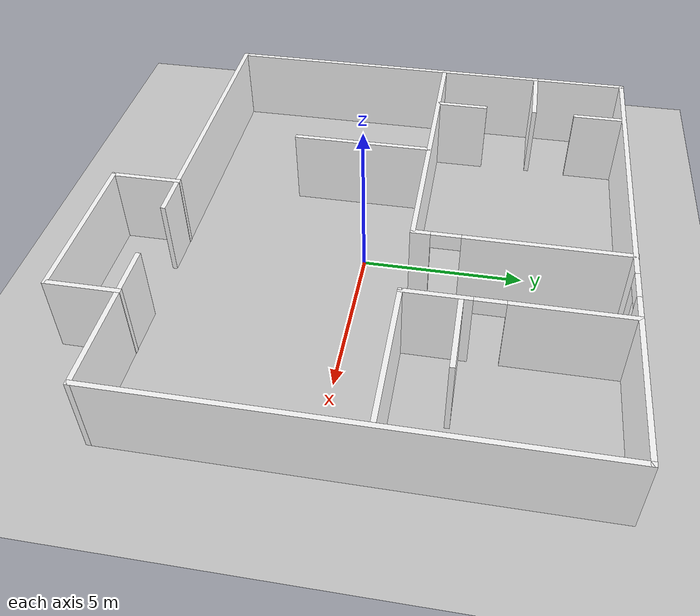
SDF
<?xml version="1.0" ?>

<sdf version="1.5">
	<world name="default">
		<!-- A global light source -->
		<include>
			<uri>model://sun</uri>
		</include>

		<!-- A ground plane -->
		<include>
			<uri>model://ground_plane</uri>
		</include>

    <!-- Apartment model -->
		<include>
			<uri>model://apt321</uri>
		</include>
	</world>
</sdf>

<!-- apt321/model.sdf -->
<sdf version='1.6'>
  <model name='apt321'>
    <pose>0 0 0 0 0 0</pose>
    <link name='Wall_1'>
      <pose>0.003543 7.96039 0 0 -0 0</pose>
      <visual name='Wall_1_Visual_0'>
        <pose>-3.12073 0 1.25 0 -0 0</pose>
        <geometry>
          <box>
            <size>9.75855 0.15 2.5</size>
          </box>
        </geometry>
        <material>
          <ambient>1 1 1 1</ambient>
        </material>
        <meta>
          <layer>0</layer>
        </meta>
      </visual>
      <collision name='Wall_1_Collision_0'>
        <geometry>
          <box>
            <size>9.75855 0.15 2.5</size>
          </box>
        </geometry>
        <pose>-3.12073 0 1.25 0 -0 0</pose>
      </collision>
      <visual name='Wall_1_Visual_1'>
        <pose>5.32927 0 1.25 0 -0 0</pose>
        <geometry>
          <box>
            <size>5.34145 0.15 2.5</size>
          </box>
        </geometry>
        <material>
          <ambient>1 1 1 1</ambient>
        </material>
        <meta>
          <layer>0</layer>
        </meta>
      </visual>
      <collision name='Wall_1_Collision_1'>
        <geometry>
          <box>
            <size>5.34145 0.15 2.5</size>
          </box>
        </geometry>
        <pose>5.32927 0 1.25 0 -0 0</pose>
      </collision>
      <visual name='Wall_1_Visual_2'>
        <pose>2.20855 0 2.25 0 -0 0</pose>
        <geometry>
          <box>
            <size>0.9 0.15 0.5</size>
          </box>
        </geometry>
        <material>
          <ambient>1 1 1 1</ambient>
        </material>
        <meta>
          <layer>0</layer>
        </meta>
      </visual>
      <collision name='Wall_1_Collision_2'>
        <geometry>
          <box>
            <size>0.9 0.15 0.5</size>
          </box>
        </geometry>
        <pose>2.20855 0 2.25 0 -0 0</pose>
      </collision>
    </link>
    <link name='Wall_13'>
      <collision name='Wall_13_Collision'>
        <geometry>
          <box>
            <size>9 0.15 2.5</size>
          </box>
        </geometry>
        <pose>0 0 1.25 0 -0 0</pose>
      </collision>
      <visual name='Wall_13_Visual'>
        <pose>0 0 1.25 0 -0 0</pose>
        <geometry>
          <box>
            <size>9 0.15 2.5</size>
          </box>
        </geometry>
        <material>
          <ambient>1 1 1 1</ambient>
        </material>
        <meta>
          <layer>0</layer>
        </meta>
      </visual>
      <pose>-3.37983 1.62813 0 0 -0 3.14159</pose>
    </link>
    <link name='Wall_15'>
      <pose>3.47388 4.78 0 0 -0 -1.5708</pose>
      <visual name='Wall_15_Visual_0'>
        <pose>-1.47903 0 1.25 0 -0 0</pose>
        <geometry>
          <box>
            <size>3.54194 0.15 2.5</size>
          </box>
        </geometry>
        <material>
          <ambient>1 1 1 1</ambient>
        </material>
        <meta>
          <layer>0</layer>
        </meta>
      </visual>
      <collision name='Wall_15_Collision_0'>
        <geometry>
          <box>
            <size>3.54194 0.15 2.5</size>
          </box>
        </geometry>
        <pose>-1.47903 0 1.25 0 -0 0</pose>
      </collision>
      <visual name='Wall_15_Visual_1'>
        <pose>2.22097 0 1.25 0 -0 0</pose>
        <geometry>
          <box>
            <size>2.05806 0.15 2.5</size>
          </box>
        </geometry>
        <material>
          <ambient>1 1 1 1</ambient>
        </material>
        <meta>
          <layer>0</layer>
        </meta>
      </visual>
      <collision name='Wall_15_Collision_1'>
        <geometry>
          <box>
            <size>2.05806 0.15 2.5</size>
          </box>
        </geometry>
        <pose>2.22097 0 1.25 0 -0 0</pose>
      </collision>
      <visual name='Wall_15_Visual_2'>
        <pose>0.741938 0 2.25 0 -0 0</pose>
        <geometry>
          <box>
            <size>0.9 0.15 0.5</size>
          </box>
        </geometry>
        <material>
          <ambient>1 1 1 1</ambient>
        </material>
        <meta>
          <layer>0</layer>
        </meta>
      </visual>
      <collision name='Wall_15_Collision_2'>
        <geometry>
          <box>
            <size>0.9 0.15 0.5</size>
          </box>
        </geometry>
        <pose>0.741938 0 2.25 0 -0 0</pose>
      </collision>
    </link>
    <link name='Wall_16'>
      <collision name='Wall_16_Collision'>
        <geometry>
          <box>
            <size>4.5 0.15 2.5</size>
          </box>
        </geometry>
        <pose>0 0 1.25 0 -0 0</pose>
      </collision>
      <visual name='Wall_16_Visual'>
        <pose>0 0 1.25 0 -0 0</pose>
        <geometry>
          <box>
            <size>4.5 0.15 2.5</size>
          </box>
        </geometry>
        <material>
          <ambient>1 1 1 1</ambient>
        </material>
        <meta>
          <layer>0</layer>
        </meta>
      </visual>
      <pose>5.64888 1.605 0 0 -0 0</pose>
    </link>
    <link name='Wall_18'>
      <pose>1.04517 4.80313 0 0 -0 1.5708</pose>
      <visual name='Wall_18_Visual_0'>
        <pose>-2.95099 0 1.25 0 -0 0</pose>
        <geometry>
          <box>
            <size>0.59803 0.15 2.5</size>
          </box>
        </geometry>
        <material>
          <ambient>1 1 1 1</ambient>
        </material>
        <meta>
          <layer>0</layer>
        </meta>
      </visual>
      <collision name='Wall_18_Collision_0'>
        <geometry>
          <box>
            <size>0.59803 0.15 2.5</size>
          </box>
        </geometry>
        <pose>-2.95099 0 1.25 0 -0 0</pose>
      </collision>
      <visual name='Wall_18_Visual_1'>
        <pose>0.749015 0 1.25 0 -0 0</pose>
        <geometry>
          <box>
            <size>5.00197 0.15 2.5</size>
          </box>
        </geometry>
        <material>
          <ambient>1 1 1 1</ambient>
        </material>
        <meta>
          <layer>0</layer>
        </meta>
      </visual>
      <collision name='Wall_18_Collision_1'>
        <geometry>
          <box>
            <size>5.00197 0.15 2.5</size>
          </box>
        </geometry>
        <pose>0.749015 0 1.25 0 -0 0</pose>
      </collision>
      <visual name='Wall_18_Visual_2'>
        <pose>-2.20197 0 2.25 0 -0 0</pose>
        <geometry>
          <box>
            <size>0.9 0.15 0.5</size>
          </box>
        </geometry>
        <material>
          <ambient>1 1 1 1</ambient>
        </material>
        <meta>
          <layer>0</layer>
        </meta>
      </visual>
      <collision name='Wall_18_Collision_2'>
        <geometry>
          <box>
            <size>0.9 0.15 0.5</size>
          </box>
        </geometry>
        <pose>-2.20197 0 2.25 0 -0 0</pose>
      </collision>
    </link>
    <link name='Wall_2'>
      <collision name='Wall_2_Collision'>
        <geometry>
          <box>
            <size>14 0.15 2.5</size>
          </box>
        </geometry>
        <pose>0 0 1.25 0 -0 0</pose>
      </collision>
      <visual name='Wall_2_Visual'>
        <pose>0 0 1.25 0 -0 0</pose>
        <geometry>
          <box>
            <size>14 0.15 2.5</size>
          </box>
        </geometry>
        <material>
          <ambient>1 1 1 1</ambient>
        </material>
        <meta>
          <layer>0</layer>
        </meta>
      </visual>
      <pose>7.92854 1.03539 0 0 -0 -1.5708</pose>
    </link>
    <link name='Wall_20'>
      <collision name='Wall_20_Collision'>
        <geometry>
          <box>
            <size>4.5 0.15 2.5</size>
          </box>
        </geometry>
        <pose>0 0 1.25 0 -0 0</pose>
      </collision>
      <visual name='Wall_20_Visual'>
        <pose>0 0 1.25 0 -0 0</pose>
        <geometry>
          <box>
            <size>4.5 0.15 2.5</size>
          </box>
        </geometry>
        <material>
          <ambient>1 1 1 1</ambient>
        </material>
        <meta>
          <layer>0</layer>
        </meta>
      </visual>
      <pose>-3.05009 -0.572151 0 0 -0 -1.5708</pose>
    </link>
    <link name='Wall_26'>
      <collision name='Wall_26_Collision'>
        <geometry>
          <box>
            <size>2.25 0.15 2.5</size>
          </box>
        </geometry>
        <pose>0 0 1.25 0 -0 0</pose>
      </collision>
      <visual name='Wall_26_Visual'>
        <pose>0 0 1.25 0 -0 0</pose>
        <geometry>
          <box>
            <size>2.25 0.15 2.5</size>
          </box>
        </geometry>
        <material>
          <ambient>1 1 1 1</ambient>
        </material>
        <meta>
          <layer>0</layer>
        </meta>
      </visual>
      <pose>-0.086251 -6.92813 0 0 -0 -1.5708</pose>
    </link>
    <link name='Wall_27'>
      <collision name='Wall_27_Collision'>
        <geometry>
          <box>
            <size>5 0.15 2.5</size>
          </box>
        </geometry>
        <pose>0 0 1.25 0 -0 0</pose>
      </collision>
      <visual name='Wall_27_Visual'>
        <pose>0 0 1.25 0 -0 0</pose>
        <geometry>
          <box>
            <size>5 0.15 2.5</size>
          </box>
        </geometry>
        <material>
          <ambient>1 1 1 1</ambient>
        </material>
        <meta>
          <layer>0</layer>
        </meta>
      </visual>
      <pose>2.33875 -7.97813 0 0 -0 0</pose>
    </link>
    <link name='Wall_29'>
      <collision name='Wall_29_Collision'>
        <geometry>
          <box>
            <size>2.25 0.15 2.5</size>
          </box>
        </geometry>
        <pose>0 0 1.25 0 -0 0</pose>
      </collision>
      <visual name='Wall_29_Visual'>
        <pose>0 0 1.25 0 -0 0</pose>
        <geometry>
          <box>
            <size>2.25 0.15 2.5</size>
          </box>
        </geometry>
        <material>
          <ambient>1 1 1 1</ambient>
        </material>
        <meta>
          <layer>0</layer>
        </meta>
      </visual>
      <pose>4.76375 -6.92813 0 0 -0 1.5708</pose>
    </link>
    <link name='Wall_35'>
      <collision name='Wall_35_Collision'>
        <geometry>
          <box>
            <size>9.25 0.15 2.5</size>
          </box>
        </geometry>
        <pose>0 0 1.25 0 -0 0</pose>
      </collision>
      <visual name='Wall_35_Visual'>
        <pose>0 0 1.25 0 -0 0</pose>
        <geometry>
          <box>
            <size>9.25 0.15 2.5</size>
          </box>
        </geometry>
        <material>
          <ambient>1 1 1 1</ambient>
        </material>
        <meta>
          <layer>0</layer>
        </meta>
      </visual>
      <pose>-3.37146 -5.88961 0 0 -0 0</pose>
    </link>
    <link name='Wall_37'>
      <collision name='Wall_37_Collision'>
        <geometry>
          <box>
            <size>4.75 0.15 2.5</size>
          </box>
        </geometry>
        <pose>0 0 1.25 0 -0 0</pose>
      </collision>
      <visual name='Wall_37_Visual'>
        <pose>0 0 1.25 0 -0 0</pose>
        <geometry>
          <box>
            <size>4.75 0.15 2.5</size>
          </box>
        </geometry>
        <material>
          <ambient>1 1 1 1</ambient>
        </material>
        <meta>
          <layer>0</layer>
        </meta>
      </visual>
      <pose>5.62854 -5.88961 0 0 -0 3.14159</pose>
    </link>
    <link name='Wall_39'>
      <collision name='Wall_39_Collision'>
        <geometry>
          <box>
            <size>2.5 0.15 2.5</size>
          </box>
        </geometry>
        <pose>0 0 1.25 0 -0 0</pose>
      </collision>
      <visual name='Wall_39_Visual'>
        <pose>0 0 1.25 0 -0 0</pose>
        <geometry>
          <box>
            <size>2.5 0.15 2.5</size>
          </box>
        </geometry>
        <material>
          <ambient>1 1 1 1</ambient>
        </material>
        <meta>
          <layer>0</layer>
        </meta>
      </visual>
      <pose>4.67516 3.26033 0 0 -0 0</pose>
    </link>
    <link name='Wall_4'>
      <collision name='Wall_4_Collision'>
        <geometry>
          <box>
            <size>14 0.15 2.5</size>
          </box>
        </geometry>
        <pose>0 0 1.25 0 -0 0</pose>
      </collision>
      <visual name='Wall_4_Visual'>
        <pose>0 0 1.25 0 -0 0</pose>
        <geometry>
          <box>
            <size>14 0.15 2.5</size>
          </box>
        </geometry>
        <material>
          <ambient>1 1 1 1</ambient>
        </material>
        <meta>
          <layer>0</layer>
        </meta>
      </visual>
      <pose>-7.92146 1.03539 0 0 -0 1.5708</pose>
    </link>
    <link name='Wall_44'>
      <collision name='Wall_44_Collision'>
        <geometry>
          <box>
            <size>2.25 0.15 2.5</size>
          </box>
        </geometry>
        <pose>0 0 1.25 0 -0 0</pose>
      </collision>
      <visual name='Wall_44_Visual'>
        <pose>0 0 1.25 0 -0 0</pose>
        <geometry>
          <box>
            <size>2.25 0.15 2.5</size>
          </box>
        </geometry>
        <material>
          <ambient>1 1 1 1</ambient>
        </material>
        <meta>
          <layer>0</layer>
        </meta>
      </visual>
      <pose>-6.87854 4.93924 0 0 -0 0</pose>
    </link>
    <link name='Wall_46'>
      <collision name='Wall_46_Collision'>
        <geometry>
          <box>
            <size>1.75 0.15 2.5</size>
          </box>
        </geometry>
        <pose>0 0 1.25 0 -0 0</pose>
      </collision>
      <visual name='Wall_46_Visual'>
        <pose>0 0 1.25 0 -0 0</pose>
        <geometry>
          <box>
            <size>1.75 0.15 2.5</size>
          </box>
        </geometry>
        <material>
          <ambient>1 1 1 1</ambient>
        </material>
        <meta>
          <layer>0</layer>
        </meta>
      </visual>
      <pose>-5.7844 7.15318 0 0 -0 -1.5708</pose>
    </link>
    <link name='Wall_49'>
      <collision name='Wall_49_Collision'>
        <geometry>
          <box>
            <size>1.75 0.15 2.5</size>
          </box>
        </geometry>
        <pose>0 0 1.25 0 -0 0</pose>
      </collision>
      <visual name='Wall_49_Visual'>
        <pose>0 0 1.25 0 -0 0</pose>
        <geometry>
          <box>
            <size>1.75 0.15 2.5</size>
          </box>
        </geometry>
        <material>
          <ambient>1 1 1 1</ambient>
        </material>
        <meta>
          <layer>0</layer>
        </meta>
      </visual>
      <pose>-5.80463 2.44211 0 0 -0 1.5708</pose>
    </link>
    <static>1</static>
  </model>
</sdf>
